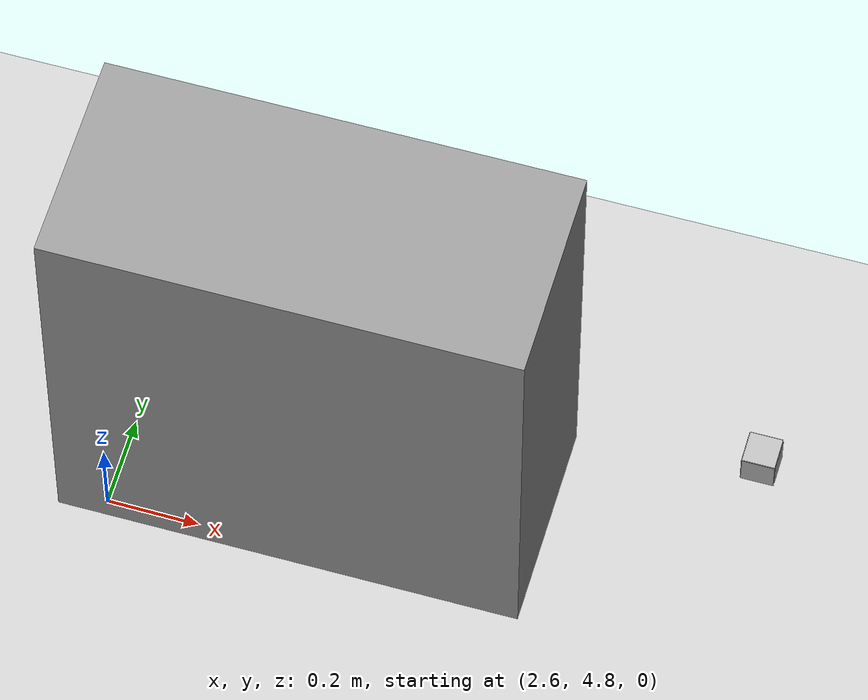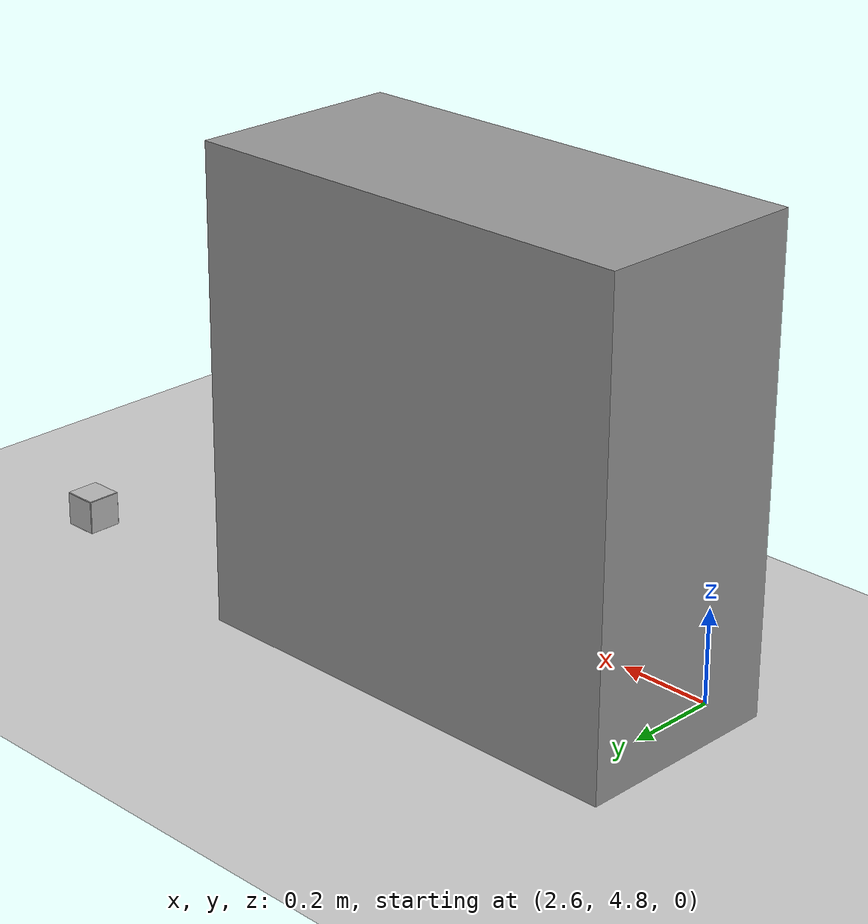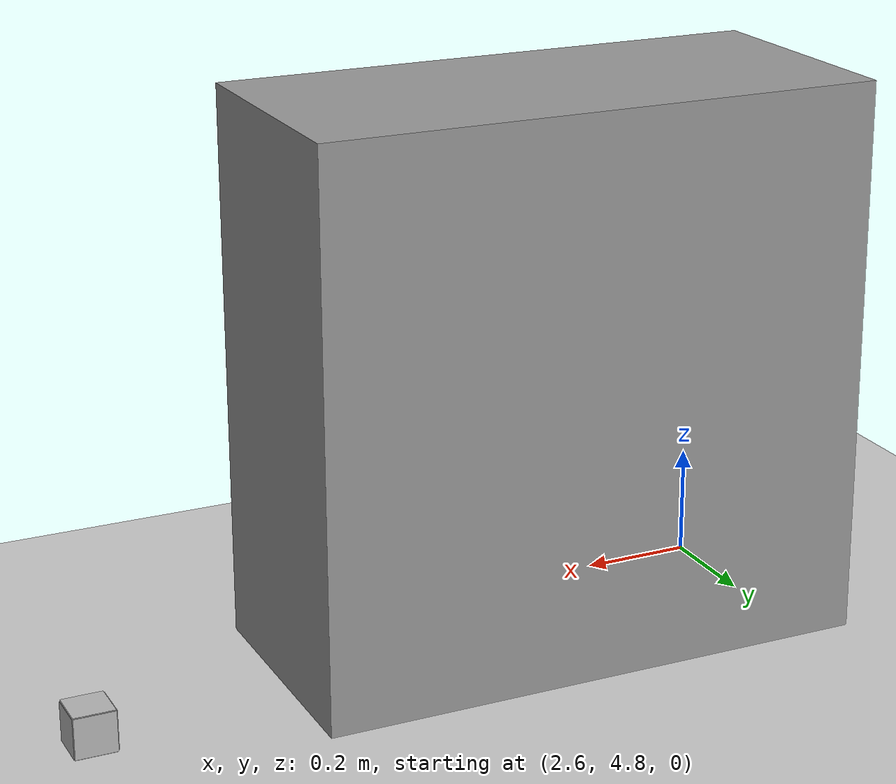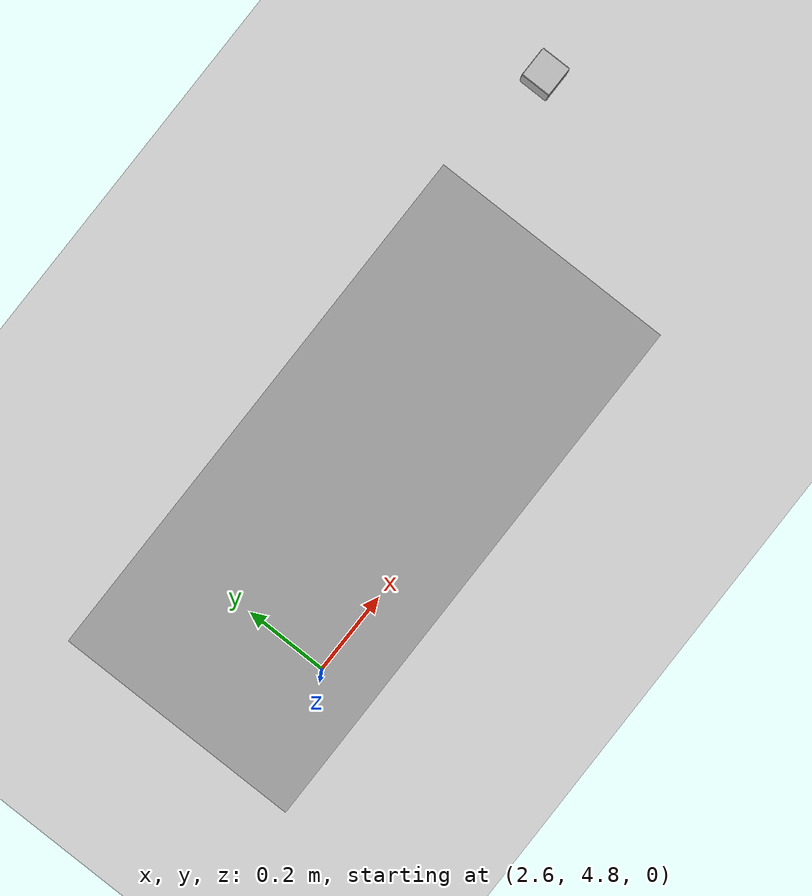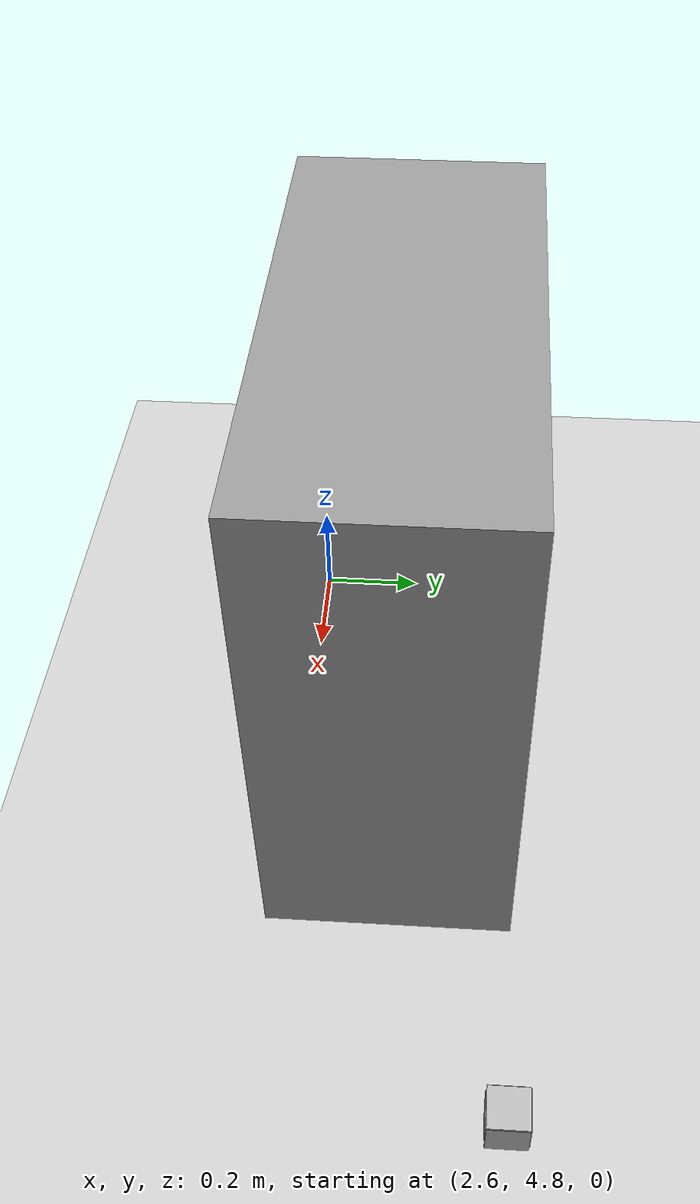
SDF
<sdf version="1.7">
 <world name="default">
  <light name="sun" type="directional">
   <pose>0 0 10 0 -0 0</pose>
   <diffuse>0.8 0.8 0.8 1</diffuse>
   <specular>0.2 0.2 0.2 1</specular>
   <attenuation>
    <range>1000</range>
    <constant>0.9</constant>
    <linear>0.01</linear>
    <quadratic>0.001</quadratic>
   </attenuation>
   <direction>-0.5 0.1 -0.9</direction>
   <spot><inner_angle>0</inner_angle><outer_angle>0</outer_angle><falloff>0</falloff></spot>
  </light>
  <model name="ground_plane">
   <static>1</static>
   <link name="link">
    <collision name="collision">
     <geometry><plane><normal>0 0 1</normal><size>100 100</size></plane></geometry>
     <surface>
      <contact><collide_bitmask>65535</collide_bitmask></contact>
      <friction><ode><mu>100</mu><mu2>50</mu2></ode></friction>
     </surface>
    </collision>
    <visual name="visual">
     <cast_shadows>0</cast_shadows>
     <geometry><plane><normal>0 0 1</normal><size>100 100</size></plane></geometry>
     <material>
      <script><uri>file://media/materials/scripts/gazebo.material</uri><name>Gazebo/Grey</name></script>
     </material>
    </visual>
   </link>
  </model>
  <physics type="ode">
   <real_time_update_rate>1000</real_time_update_rate>
   <max_step_size>0.001</max_step_size>
   <real_time_factor>1</real_time_factor>
   <ode>
    <solver>
     <type>quick</type>
     <iters>150</iters>
     <precon_iters>0</precon_iters>
     <sor>1.4</sor>
     <use_dynamic_moi_rescaling>1</use_dynamic_moi_rescaling>
    </solver>
    <constraints>
     <cfm>1e-05</cfm>
     <erp>0.2</erp>
     <contact_max_correcting_vel>2000</contact_max_correcting_vel>
     <contact_surface_layer>0.01</contact_surface_layer>
    </constraints>
   </ode>
  </physics>
  <scene><ambient>0.4 0.4 0.4 1</ambient><background>0.7 0.7 0.7 1</background><shadows>1</shadows></scene>
  <gravity>0 0 -9.8</gravity>
  <magnetic_field>6e-06 2.3e-05 -4.2e-05</magnetic_field>
  <atmosphere type="adiabatic"/>
  <spherical_coordinates>
   <surface_model>EARTH_WGS84</surface_model>
   <latitude_deg>0</latitude_deg>
   <longitude_deg>0</longitude_deg>
   <elevation>0</elevation>
   <heading_deg>0</heading_deg>
  </spherical_coordinates>
  <model name="unit_box">
   <link name="link">
    <inertial>
     <mass>1</mass>
     <inertia>
      <ixx>0.166667</ixx>
      <ixy>0</ixy>
      <ixz>0</ixz>
      <iyy>0.166667</iyy>
      <iyz>0</iyz>
      <izz>0.166667</izz>
     </inertia>
     <pose>3 5 0 0 -0 0</pose>
    </inertial>
    <visual name="visual">
     <geometry><box><size>1 0.455962 1</size></box></geometry>
     <material>
      <script><name>Gazebo/Grey</name><uri>file://media/materials/scripts/gazebo.material</uri></script>
      <shader type="pixel"><normal_map>__default__</normal_map></shader>
      <ambient>0.3 0.3 0.3 1</ambient>
      <diffuse>0.7 0.7 0.7 1</diffuse>
      <specular>0.01 0.01 0.01 1</specular>
      <emissive>0 0 0 1</emissive>
     </material>
    </visual>
    <collision name="collision">
     <geometry><box><size>1 0.455962 1</size></box></geometry>
     <surface>
      <friction>
       <ode><mu>1</mu><mu2>1</mu2><fdir1>0 0 0</fdir1><slip1>0</slip1><slip2>0</slip2></ode>
       <torsional>
        <coefficient>1</coefficient>
        <patch_radius>0</patch_radius>
        <surface_radius>0</surface_radius>
        <use_patch_radius>1</use_patch_radius>
        <ode><slip>0</slip></ode>
       </torsional>
      </friction>
      <bounce><restitution_coefficient>0</restitution_coefficient><threshold>1e+06</threshold></bounce>
      <contact>
       <collide_without_contact>0</collide_without_contact>
       <collide_without_contact_bitmask>1</collide_without_contact_bitmask>
       <collide_bitmask>1</collide_bitmask>
       <ode>
        <soft_cfm>0</soft_cfm>
        <soft_erp>0.2</soft_erp>
        <kp>1e+13</kp>
        <kd>1</kd>
        <max_vel>0.01</max_vel>
        <min_depth>0</min_depth>
       </ode>
       <bullet>
        <split_impulse>1</split_impulse>
        <split_impulse_penetration_threshold>-0.01</split_impulse_penetration_threshold>
        <soft_cfm>0</soft_cfm>
        <soft_erp>0.2</soft_erp>
        <kp>1e+13</kp>
        <kd>1</kd>
       </bullet>
      </contact>
     </surface>
    </collision>
   </link>
   <static>1</static>
   <pose>3.00167 4.99762 0.5 0 -0 0</pose>
  </model>
  <model name="Untitled_0">
   <model name="april_cube">
    <link name="april_cube_40">
     <inertial>
      <mass>0.036</mass>
      <inertia>
       <ixx>0.00108533</ixx>
       <ixy>-1.20708e-12</ixy>
       <ixz>-2.45849e-16</ixz>
       <iyy>8.5329e-05</iyy>
       <iyz>4.99917e-09</iyz>
       <izz>8.5329e-05</izz>
      </inertia>
     </inertial>
     <visual name="april_cube_40_visual">
      <geometry><box><size>0.071 0.071 0.071</size></box></geometry>
      <material><shader type="pixel"/></material>
     </visual>
     <visual name="april_cube_40_tag_40_visual_1">
      <pose>0 0 0.0365 0 -0 0</pose>
      <geometry>
       <mesh>
        <scale>0.7 0.7 1</scale>
        <uri>/home/coll0215/catkin_ws/src/turtlebot3_task/meshes/tag36_11_00040.dae</uri>
       </mesh>
      </geometry>
      <material><shader type="pixel"/></material>
     </visual>
     <visual name="april_cube_40_tag_41_visual_2">
      <pose>0 -0.0365 0 1.571 -0 0</pose>
      <geometry>
       <mesh>
        <scale>0.7 0.7 1</scale>
        <uri>/home/coll0215/catkin_ws/src/turtlebot3_task/meshes/tag36_11_00041.dae</uri>
       </mesh>
      </geometry>
      <material><shader type="pixel"/></material>
     </visual>
     <visual name="april_cube_40_tag_42_visual_3">
      <pose>0.0365 0 0 1.571 -0 1.571</pose>
      <geometry>
       <mesh>
        <scale>0.7 0.7 1</scale>
        <uri>/home/coll0215/catkin_ws/src/turtlebot3_task/meshes/tag36_11_00042.dae</uri>
       </mesh>
      </geometry>
      <material><shader type="pixel"/></material>
     </visual>
     <visual name="april_cube_40_tag_43_visual_4">
      <pose>0 0.0365 0 1.57059 0.000593 3.14159</pose>
      <geometry>
       <mesh>
        <scale>0.7 0.7 1</scale>
        <uri>/home/coll0215/catkin_ws/src/turtlebot3_task/meshes/tag36_11_00043.dae</uri>
       </mesh>
      </geometry>
      <material><shader type="pixel"/></material>
     </visual>
     <visual name="april_cube_40_tag_44_visual_5">
      <pose>-0.0365 0 0 1.571 -0 -1.571</pose>
      <geometry>
       <mesh>
        <scale>0.7 0.7 1</scale>
        <uri>/home/coll0215/catkin_ws/src/turtlebot3_task/meshes/tag36_11_00044.dae</uri>
       </mesh>
      </geometry>
      <material><shader type="pixel"/></material>
     </visual>
     <visual name="april_cube_40_tag_45_visual_6">
      <pose>0 0 -0.0365 3.1415 -0 0</pose>
      <geometry>
       <mesh>
        <scale>0.7 0.7 1</scale>
        <uri>/home/coll0215/catkin_ws/src/turtlebot3_task/meshes/tag36_11_00045.dae</uri>
       </mesh>
      </geometry>
      <material><shader type="pixel"/></material>
     </visual>
     <collision name="april_cube_40_collision">
      <geometry><box><size>0.071 0.071 0.071</size></box></geometry>
      <surface>
       <friction>
        <ode><mu>100</mu><mu2>100</mu2><fdir1>0 0 0</fdir1><slip1>0</slip1><slip2>0</slip2></ode>
        <torsional>
         <coefficient>1</coefficient>
         <patch_radius>0</patch_radius>
         <surface_radius>0</surface_radius>
         <use_patch_radius>1</use_patch_radius>
         <ode><slip>0</slip></ode>
        </torsional>
       </friction>
       <bounce><restitution_coefficient>0</restitution_coefficient><threshold>1e+06</threshold></bounce>
       <contact>
        <collide_without_contact>0</collide_without_contact>
        <collide_without_contact_bitmask>1</collide_without_contact_bitmask>
        <collide_bitmask>1</collide_bitmask>
        <ode>
         <soft_cfm>0</soft_cfm>
         <soft_erp>0.2</soft_erp>
         <kp>1e+06</kp>
         <kd>1</kd>
         <max_vel>0.01</max_vel>
         <min_depth>0</min_depth>
        </ode>
        <bullet>
         <split_impulse>1</split_impulse>
         <split_impulse_penetration_threshold>-0.01</split_impulse_penetration_threshold>
         <soft_cfm>0</soft_cfm>
         <soft_erp>0.2</soft_erp>
         <kp>1e+06</kp>
         <kd>1</kd>
        </bullet>
       </contact>
      </surface>
     </collision>
     <collision name="april_cube_40_tag_40_collision_1">
      <pose>0 0 0.0365 0 -0 0</pose>
      <geometry><box><size>0.07 0.07 0.001</size></box></geometry>
      <surface>
       <friction>
        <ode><mu>100</mu><mu2>100</mu2><fdir1>0 0 0</fdir1><slip1>0</slip1><slip2>0</slip2></ode>
        <torsional>
         <coefficient>1</coefficient>
         <patch_radius>0</patch_radius>
         <surface_radius>0</surface_radius>
         <use_patch_radius>1</use_patch_radius>
         <ode><slip>0</slip></ode>
        </torsional>
       </friction>
       <bounce><restitution_coefficient>0</restitution_coefficient><threshold>1e+06</threshold></bounce>
       <contact>
        <collide_without_contact>0</collide_without_contact>
        <collide_without_contact_bitmask>1</collide_without_contact_bitmask>
        <collide_bitmask>1</collide_bitmask>
        <ode>
         <soft_cfm>0</soft_cfm>
         <soft_erp>0.2</soft_erp>
         <kp>1e+06</kp>
         <kd>1</kd>
         <max_vel>0.01</max_vel>
         <min_depth>0</min_depth>
        </ode>
        <bullet>
         <split_impulse>1</split_impulse>
         <split_impulse_penetration_threshold>-0.01</split_impulse_penetration_threshold>
         <soft_cfm>0</soft_cfm>
         <soft_erp>0.2</soft_erp>
         <kp>1e+06</kp>
         <kd>1</kd>
        </bullet>
       </contact>
      </surface>
     </collision>
     <collision name="april_cube_40_tag_41_collision_2">
      <pose>0 -0.0365 0 1.571 -0 0</pose>
      <geometry><box><size>0.07 0.07 0.001</size></box></geometry>
      <surface>
       <friction>
        <ode><mu>100</mu><mu2>100</mu2><fdir1>0 0 0</fdir1><slip1>0</slip1><slip2>0</slip2></ode>
        <torsional>
         <coefficient>1</coefficient>
         <patch_radius>0</patch_radius>
         <surface_radius>0</surface_radius>
         <use_patch_radius>1</use_patch_radius>
         <ode><slip>0</slip></ode>
        </torsional>
       </friction>
       <bounce><restitution_coefficient>0</restitution_coefficient><threshold>1e+06</threshold></bounce>
       <contact>
        <collide_without_contact>0</collide_without_contact>
        <collide_without_contact_bitmask>1</collide_without_contact_bitmask>
        <collide_bitmask>1</collide_bitmask>
        <ode>
         <soft_cfm>0</soft_cfm>
         <soft_erp>0.2</soft_erp>
         <kp>1e+06</kp>
         <kd>1</kd>
         <max_vel>0.01</max_vel>
         <min_depth>0</min_depth>
        </ode>
        <bullet>
         <split_impulse>1</split_impulse>
         <split_impulse_penetration_threshold>-0.01</split_impulse_penetration_threshold>
         <soft_cfm>0</soft_cfm>
         <soft_erp>0.2</soft_erp>
         <kp>1e+06</kp>
         <kd>1</kd>
        </bullet>
       </contact>
      </surface>
     </collision>
     <collision name="april_cube_40_tag_43_collision_4">
      <pose>0 0.0365 0 1.57059 0.000593 3.14159</pose>
      <geometry><box><size>0.07 0.07 0.001</size></box></geometry>
      <surface>
       <friction>
        <ode><mu>100</mu><mu2>100</mu2><fdir1>0 0 0</fdir1><slip1>0</slip1><slip2>0</slip2></ode>
        <torsional>
         <coefficient>1</coefficient>
         <patch_radius>0</patch_radius>
         <surface_radius>0</surface_radius>
         <use_patch_radius>1</use_patch_radius>
         <ode><slip>0</slip></ode>
        </torsional>
       </friction>
       <bounce><restitution_coefficient>0</restitution_coefficient><threshold>1e+06</threshold></bounce>
       <contact>
        <collide_without_contact>0</collide_without_contact>
        <collide_without_contact_bitmask>1</collide_without_contact_bitmask>
        <collide_bitmask>1</collide_bitmask>
        <ode>
         <soft_cfm>0</soft_cfm>
         <soft_erp>0.2</soft_erp>
         <kp>1e+06</kp>
         <kd>1</kd>
         <max_vel>0.01</max_vel>
         <min_depth>0</min_depth>
        </ode>
        <bullet>
         <split_impulse>1</split_impulse>
         <split_impulse_penetration_threshold>-0.01</split_impulse_penetration_threshold>
         <soft_cfm>0</soft_cfm>
         <soft_erp>0.2</soft_erp>
         <kp>1e+06</kp>
         <kd>1</kd>
        </bullet>
       </contact>
      </surface>
     </collision>
     <collision name="april_cube_40_tag_42_collision_3">
      <pose>0.0365 0 0 1.571 -0 1.571</pose>
      <geometry><box><size>0.07 0.07 0.001</size></box></geometry>
      <surface>
       <friction>
        <ode><mu>100</mu><mu2>100</mu2><fdir1>0 0 0</fdir1><slip1>0</slip1><slip2>0</slip2></ode>
        <torsional>
         <coefficient>1</coefficient>
         <patch_radius>0</patch_radius>
         <surface_radius>0</surface_radius>
         <use_patch_radius>1</use_patch_radius>
         <ode><slip>0</slip></ode>
        </torsional>
       </friction>
       <bounce><restitution_coefficient>0</restitution_coefficient><threshold>1e+06</threshold></bounce>
       <contact>
        <collide_without_contact>0</collide_without_contact>
        <collide_without_contact_bitmask>1</collide_without_contact_bitmask>
        <collide_bitmask>1</collide_bitmask>
        <ode>
         <soft_cfm>0</soft_cfm>
         <soft_erp>0.2</soft_erp>
         <kp>1e+06</kp>
         <kd>1</kd>
         <max_vel>0.01</max_vel>
         <min_depth>0</min_depth>
        </ode>
        <bullet>
         <split_impulse>1</split_impulse>
         <split_impulse_penetration_threshold>-0.01</split_impulse_penetration_threshold>
         <soft_cfm>0</soft_cfm>
         <soft_erp>0.2</soft_erp>
         <kp>1e+06</kp>
         <kd>1</kd>
        </bullet>
       </contact>
      </surface>
     </collision>
     <collision name="april_cube_40_tag_44_collision_5">
      <pose>-0.0365 0 0 1.571 -0 -1.571</pose>
      <geometry><box><size>0.07 0.07 0.001</size></box></geometry>
      <surface>
       <friction>
        <ode><mu>100</mu><mu2>100</mu2><fdir1>0 0 0</fdir1><slip1>0</slip1><slip2>0</slip2></ode>
        <torsional>
         <coefficient>1</coefficient>
         <patch_radius>0</patch_radius>
         <surface_radius>0</surface_radius>
         <use_patch_radius>1</use_patch_radius>
         <ode><slip>0</slip></ode>
        </torsional>
       </friction>
       <bounce><restitution_coefficient>0</restitution_coefficient><threshold>1e+06</threshold></bounce>
       <contact>
        <collide_without_contact>0</collide_without_contact>
        <collide_without_contact_bitmask>1</collide_without_contact_bitmask>
        <collide_bitmask>1</collide_bitmask>
        <ode>
         <soft_cfm>0</soft_cfm>
         <soft_erp>0.2</soft_erp>
         <kp>1e+06</kp>
         <kd>1</kd>
         <max_vel>0.01</max_vel>
         <min_depth>0</min_depth>
        </ode>
        <bullet>
         <split_impulse>1</split_impulse>
         <split_impulse_penetration_threshold>-0.01</split_impulse_penetration_threshold>
         <soft_cfm>0</soft_cfm>
         <soft_erp>0.2</soft_erp>
         <kp>1e+06</kp>
         <kd>1</kd>
        </bullet>
       </contact>
      </surface>
     </collision>
     <collision name="april_cube_40_tag_45_collision_6">
      <pose>0 0 -0.0365 3.1415 -0 0</pose>
      <geometry><box><size>0.07 0.07 0.001</size></box></geometry>
      <surface>
       <friction>
        <ode><mu>100</mu><mu2>100</mu2><fdir1>0 0 0</fdir1><slip1>0</slip1><slip2>0</slip2></ode>
        <torsional>
         <coefficient>1</coefficient>
         <patch_radius>0</patch_radius>
         <surface_radius>0</surface_radius>
         <use_patch_radius>1</use_patch_radius>
         <ode><slip>0</slip></ode>
        </torsional>
       </friction>
       <bounce><restitution_coefficient>0</restitution_coefficient><threshold>1e+06</threshold></bounce>
       <contact>
        <collide_without_contact>0</collide_without_contact>
        <collide_without_contact_bitmask>1</collide_without_contact_bitmask>
        <collide_bitmask>1</collide_bitmask>
        <ode>
         <soft_cfm>0</soft_cfm>
         <soft_erp>0.2</soft_erp>
         <kp>1e+06</kp>
         <kd>1</kd>
         <max_vel>0.01</max_vel>
         <min_depth>0</min_depth>
        </ode>
        <bullet>
         <split_impulse>1</split_impulse>
         <split_impulse_penetration_threshold>-0.01</split_impulse_penetration_threshold>
         <soft_cfm>0</soft_cfm>
         <soft_erp>0.2</soft_erp>
         <kp>1e+06</kp>
         <kd>1</kd>
        </bullet>
       </contact>
      </surface>
     </collision>
    </link>
    <static>1</static>
    <pose>2e-06 4e-06 0 0 -0 0</pose>
   </model>
   <static>0</static>
   <pose>3.9021 5.21848 0.111941 0 -0 0</pose>
  </model>
 </world>
</sdf>
